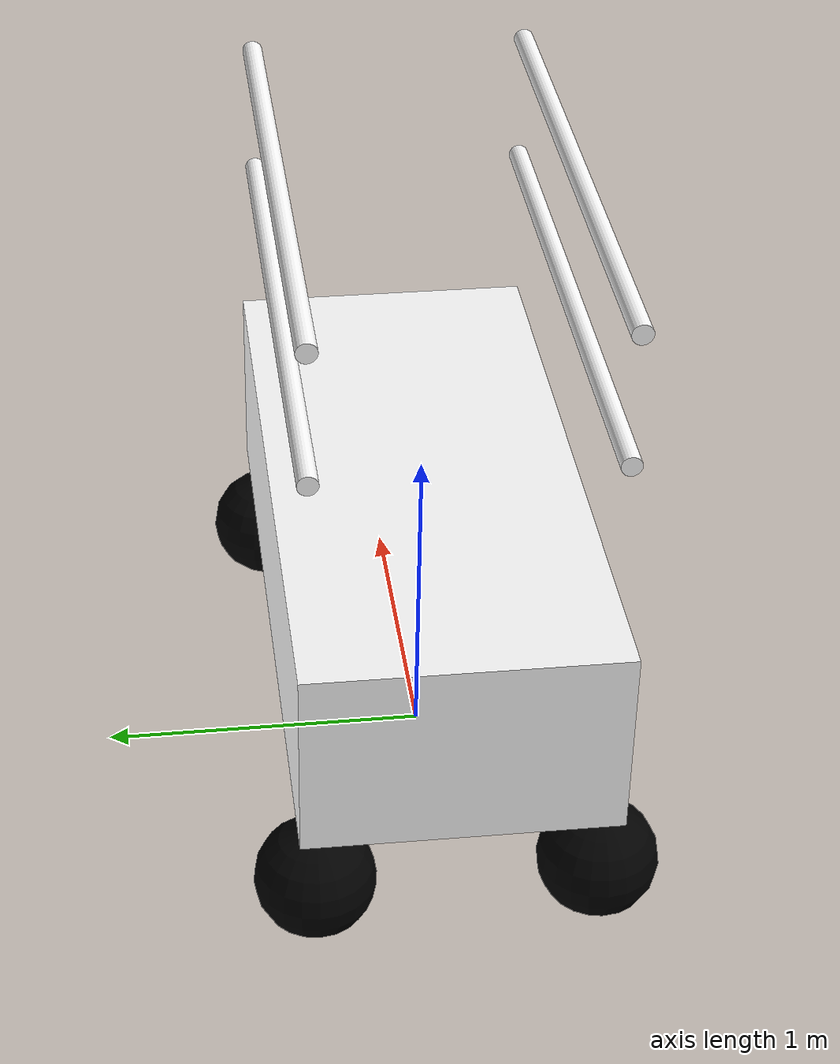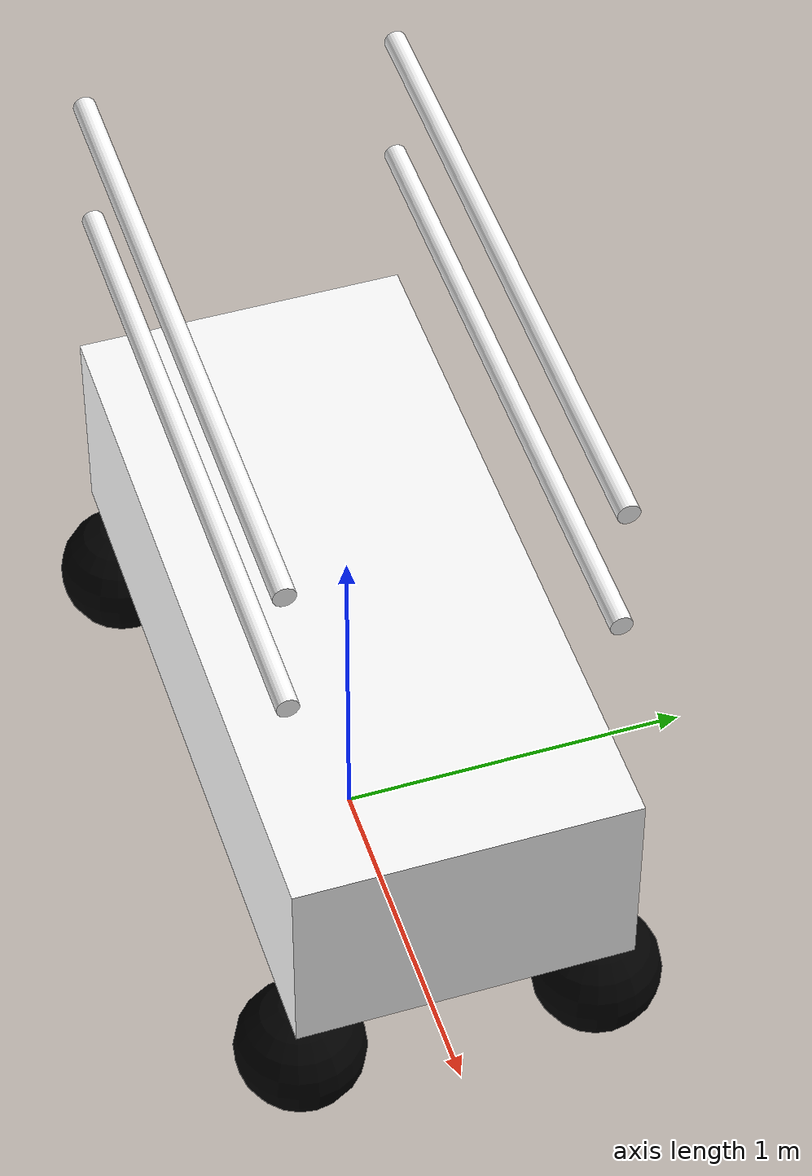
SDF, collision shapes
<?xml version="1.0"?>
<sdf version="1.12">
    <model name="Mecanum lift" xmlns:ignition="https://ignitionrobotics.org/schema">
        <link name="chassis">
            <inertial>
                <pose>0.036 0.135 0 0 0 0</pose>
                <mass>1.14395</mass>
                <inertia>
                    <ixx>0.126164</ixx>
                    <ixy>0</ixy>
                    <ixz>0</ixz>
                    <iyy>0.416519</iyy>
                    <iyz>0</iyz>
                    <izz>0.481014</izz>
                </inertia>
            </inertial>
            <collision name="scissor">
                <pose>0.006 0.003 0.708 0 0 0</pose>
                <geometry>
                    <box>
                        <size>2.04 0.936 0.6</size>
                    </box>
                </geometry>
            </collision>
            <collision name="bar_1">
                <pose>-0.006 0.429 1.98 0 1.57 0</pose>
                <geometry>
                    <cylinder>
                        <radius>0.03</radius>
                        <length>1.8</length>
                    </cylinder>
                </geometry>
            </collision>
            <collision name="bar_2">
                <pose>-0.006 0.429 1.578 0 1.57 0</pose>
                <geometry>
                    <cylinder>
                        <radius>0.03</radius>
                        <length>1.8</length>
                    </cylinder>
                </geometry>
            </collision>
            <collision name="bar_3">
                <pose>-0.006 -0.423 1.578 0 1.57 0</pose>
                <geometry>
                    <cylinder>
                        <radius>0.03</radius>
                        <length>1.8</length>
                    </cylinder>
                </geometry>
            </collision>
            <collision name="bar_4">
                <pose>-0.006 -0.423 1.98 0 1.57 0</pose>
                <geometry>
                    <cylinder>
                        <radius>0.03</radius>
                        <length>1.8</length>
                    </cylinder>
                </geometry>
            </collision>
            <visual name="visual">
                <pose>0.036 0.135 -0.084 1.57 0 0</pose>
                <geometry>
                    <mesh>
                        <scale>0.6 0.6 0.6</scale>
                        <uri>meshes/MecanumLift.dae</uri>
                    </mesh>
                </geometry>
                <material>
                    <diffuse>1.0 1.0 1.0</diffuse>
                    <specular>1.0 1.0 1.0</specular>
                    <pbr>
                        <metal>
                            <albedo_map>materials/textures/Forklift_Forklift_BaseColor.png</albedo_map>
                            <normal_map>materials/textures/Forklift_Forklift_Normal.png</normal_map>
                            <metalness_map>materials/textures/Forklift_Forklift_Metallic.png</metalness_map>
                            <roughness_map>materials/textures/Forklift_Forklift_Roughness.png</roughness_map>
                            <environment_map>https://fuel.ignitionrobotics.org/1.0/openrobotics/models/Reflective table/1/files/materials/textures/DepotEnvMap.dds</environment_map>
                        </metal>
                    </pbr>
                    <!-- fallback to script if no PBR support-->
                    <script>
                        <uri>materials/scripts/</uri>
                        <uri>materials/textures/</uri>
                        <name>UrbanTile/Forklift_Diffuse</name>
                    </script>
                </material>
            </visual>
        </link>
        <link name="front_right_wheel">
            <pose>0.894 -0.417 0.186 0 0 0</pose>
            <inertial>
                <mass>2</mass>
                <inertia>
                    <ixx>0.145833</ixx>
                    <ixy>0</ixy>
                    <ixz>0</ixz>
                    <iyy>0.145833</iyy>
                    <iyz>0</iyz>
                    <izz>0.125</izz>
                </inertia>
            </inertial>
            <collision name="collision">
                <geometry>
                    <sphere>
                        <radius>0.18</radius>
                    </sphere>
                </geometry>
                <surface>
                    <friction>
                        <ode>
                            <mu>1.0</mu>
                            <mu2>0.0</mu2>
                            <fdir1 gz:expressed_in="chassis">1 1 0</fdir1>
                        </ode>
                    </friction>
                </surface>
            </collision>
            <visual name="visual">
                <geometry>
                    <mesh>
                        <uri>meshes/mecanum_wheel_right.STL</uri>
                        <scale>0.0036 0.0036 0.0036</scale>
                    </mesh>
                </geometry>
                <material>
                    <ambient>0 0 0</ambient>
                    <diffuse>0 0 0</diffuse>
                    <specular>1.0 1.0 1.0</specular>
                </material>
            </visual>
        </link>
        <link name="rear_right_wheel">
            <pose>-0.894 -0.417 0.186 0 0 0</pose>
            <inertial>
                <mass>2</mass>
                <inertia>
                    <ixx>0.145833</ixx>
                    <ixy>0</ixy>
                    <ixz>0</ixz>
                    <iyy>0.145833</iyy>
                    <iyz>0</iyz>
                    <izz>0.125</izz>
                </inertia>
            </inertial>
            <collision name="collision">
                <geometry>
                    <sphere>
                        <radius>0.18</radius>
                    </sphere>
                </geometry>
                <surface>
                    <friction>
                        <ode>
                            <mu>1.0</mu>
                            <mu2>0.0</mu2>
                            <fdir1 gz:expressed_in="chassis">1 -1 0</fdir1>
                        </ode>
                    </friction>
                </surface>
            </collision>
            <visual name="visual">
                <geometry>
                    <mesh>
                        <uri>meshes/mecanum_wheel_left.STL</uri>
                        <scale>0.0036 0.0036 0.0036</scale>
                    </mesh>
                </geometry>
                <material>
                    <ambient>0 0 0</ambient>
                    <diffuse>0 0 0</diffuse>
                    <specular>1.0 1.0 1.0</specular>
                </material>
            </visual>
        </link>
        <link name="front_left_wheel">
            <pose>0.894 0.417 0.186 0 0 0</pose>
            <inertial>
                <mass>2</mass>
                <inertia>
                    <ixx>0.145833</ixx>
                    <ixy>0</ixy>
                    <ixz>0</ixz>
                    <iyy>0.145833</iyy>
                    <iyz>0</iyz>
                    <izz>0.125</izz>
                </inertia>
            </inertial>
            <collision name="collision">
                <geometry>
                    <sphere>
                        <radius>0.18</radius>
                    </sphere>
                </geometry>
                <surface>
                    <friction>
                        <ode>
                            <mu>1.0</mu>
                            <mu2>0.0</mu2>
                            <fdir1 gz:expressed_in="chassis">1 -1 0</fdir1>
                        </ode>
                    </friction>
                </surface>
            </collision>
            <visual name="visual">
                <geometry>
                    <mesh>
                        <uri>meshes/mecanum_wheel_left.STL</uri>
                        <scale>0.0036 0.0036 0.0036</scale>
                    </mesh>
                </geometry>
                <material>
                    <ambient>0 0 0</ambient>
                    <diffuse>0 0 0</diffuse>
                    <specular>1.0 1.0 1.0</specular>
                </material>
            </visual>
        </link>
        <link name="rear_left_wheel">
            <pose>-0.894 0.417 0.186 0 0 0</pose>
            <inertial>
                <mass>2</mass>
                <inertia>
                    <ixx>0.145833</ixx>
                    <ixy>0</ixy>
                    <ixz>0</ixz>
                    <iyy>0.145833</iyy>
                    <iyz>0</iyz>
                    <izz>0.125</izz>
                </inertia>
            </inertial>
            <collision name="collision">
                <geometry>
                    <sphere>
                        <radius>0.18</radius>
                    </sphere>
                </geometry>
                <surface>
                    <friction>
                        <ode>
                            <mu>1.0</mu>
                            <mu2>0.0</mu2>
                            <fdir1 gz:expressed_in="chassis">1 1 0</fdir1>
                        </ode>
                    </friction>
                </surface>
            </collision>
            <visual name="visual">
                <geometry>
                    <mesh>
                        <uri>meshes/mecanum_wheel_right.STL</uri>
                        <scale>0.0036 0.0036 0.0036</scale>
                    </mesh>
                </geometry>
                <material>
                    <ambient>0 0 0</ambient>
                    <diffuse>0 0 0</diffuse>
                    <specular>1.0 1.0 1.0</specular>
                </material>
            </visual>
        </link>
        <joint name="front_left_wheel_joint" type="revolute">
            <parent>chassis</parent>
            <child>front_left_wheel</child>
            <axis>
                <xyz>0 1 0</xyz>
                <limit>
                    <lower>-1.79769e+308</lower>
                    <upper>1.79769e+308</upper>
                </limit>
            </axis>
        </joint>
        <joint name="front_right_wheel_joint" type="revolute">
            <parent>chassis</parent>
            <child>front_right_wheel</child>
            <axis>
                <xyz>0 1 0</xyz>
                <limit>
                    <lower>-1.79769e+308</lower>
                    <upper>1.79769e+308</upper>
                </limit>
            </axis>
        </joint>
        <joint name="rear_left_wheel_joint" type="revolute">
            <parent>chassis</parent>
            <child>rear_left_wheel</child>
            <axis>
                <xyz>0 1 0</xyz>
                <limit>
                    <lower>-1.79769e+308</lower>
                    <upper>1.79769e+308</upper>
                </limit>
            </axis>
        </joint>
        <joint name="rear_right_wheel_joint" type="revolute">
            <parent>chassis</parent>
            <child>rear_right_wheel</child>
            <axis>
                <xyz>0 1 0</xyz>
                <limit>
                    <lower>-1.79769e+308</lower>
                    <upper>1.79769e+308</upper>
                </limit>
            </axis>
        </joint>
        <plugin filename="gz-sim-mecanum-drive-system"
            name="gz::sim::systems::MecanumDrive">
            <front_left_joint>front_left_wheel_joint</front_left_joint>
            <back_left_joint>rear_left_wheel_joint</back_left_joint>
            <front_right_joint>front_right_wheel_joint</front_right_joint>
            <back_right_joint>rear_right_wheel_joint</back_right_joint>
            <wheel_separation>0.834</wheel_separation>
            <wheelbase>1.788</wheelbase>
            <wheel_radius>0.18</wheel_radius>
            <max_linear_velocity>1.2</max_linear_velocity>
            <max_angular_velocity>0.4</max_angular_velocity>
        </plugin>
        <plugin filename="gz-sim-drive-to-pose-controller-system"
            name="gz::sim::systems::DriveToPoseController">
            <linear_p_gain>1.0</linear_p_gain>
            <angular_p_gain>0.4</angular_p_gain>
            <linear_deviation>0.1</linear_deviation>
            <angular_deviation>0.1</angular_deviation>
        </plugin>
        <plugin filename="gz-sim-odometry-publisher-system"
            name="gz::sim::systems::OdometryPublisher">
        </plugin>
    </model>
</sdf>
